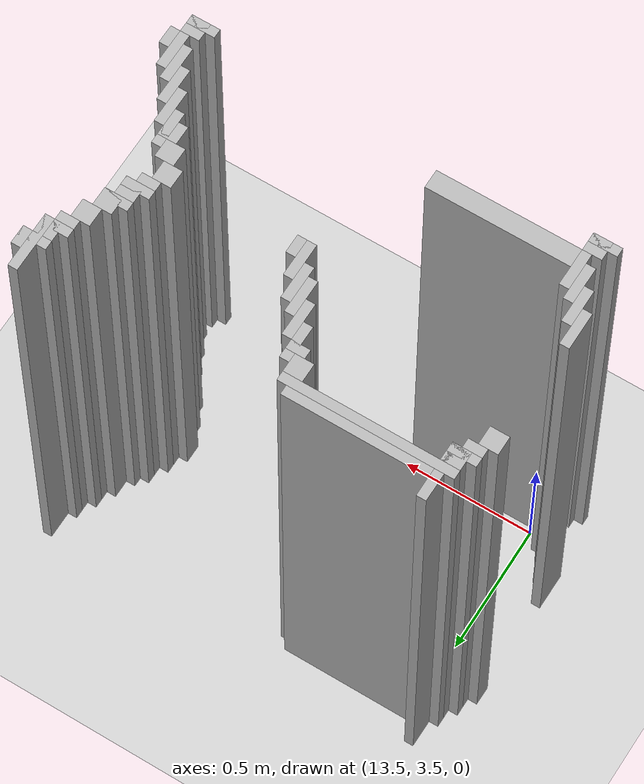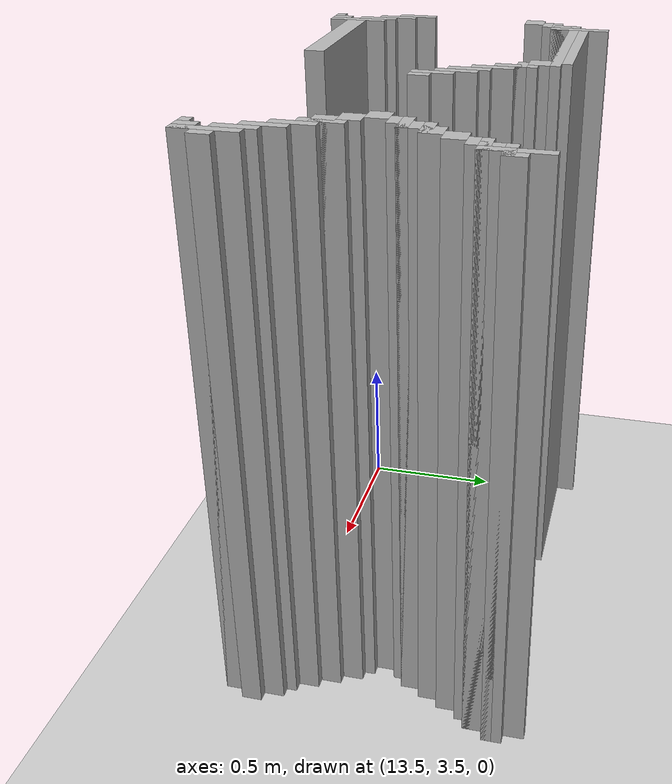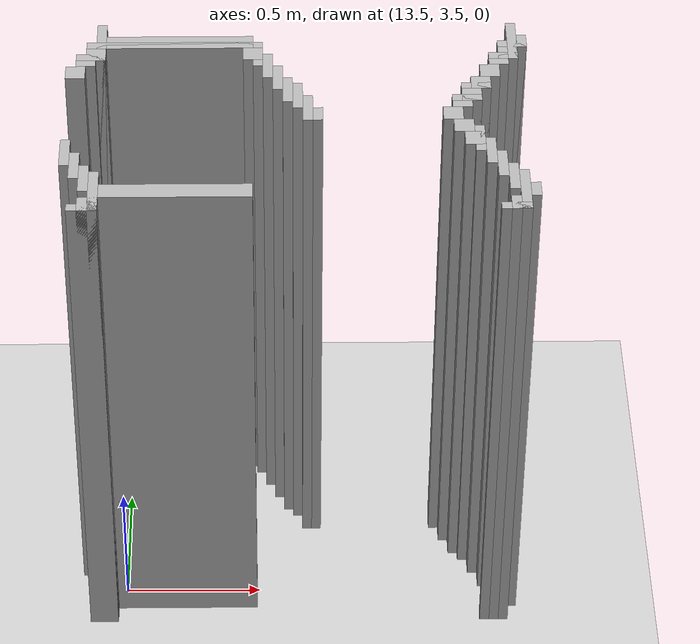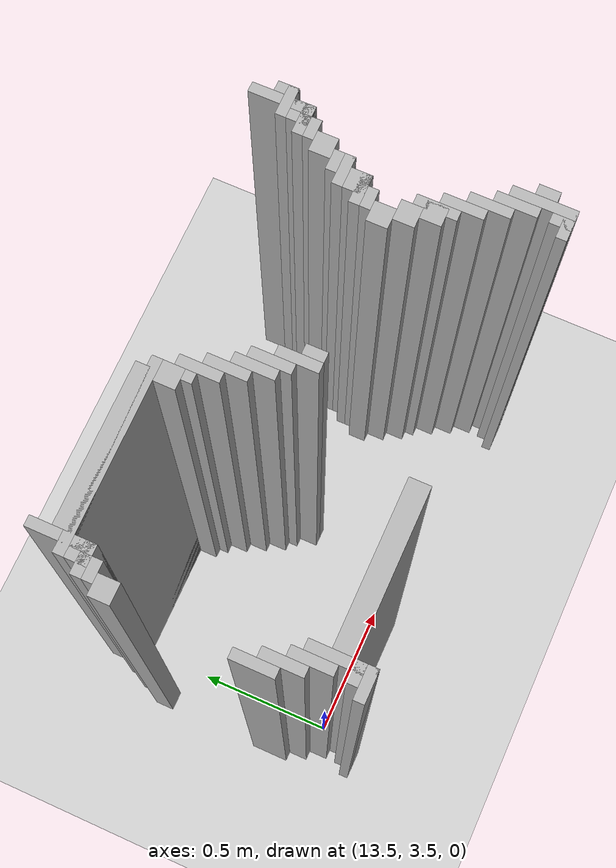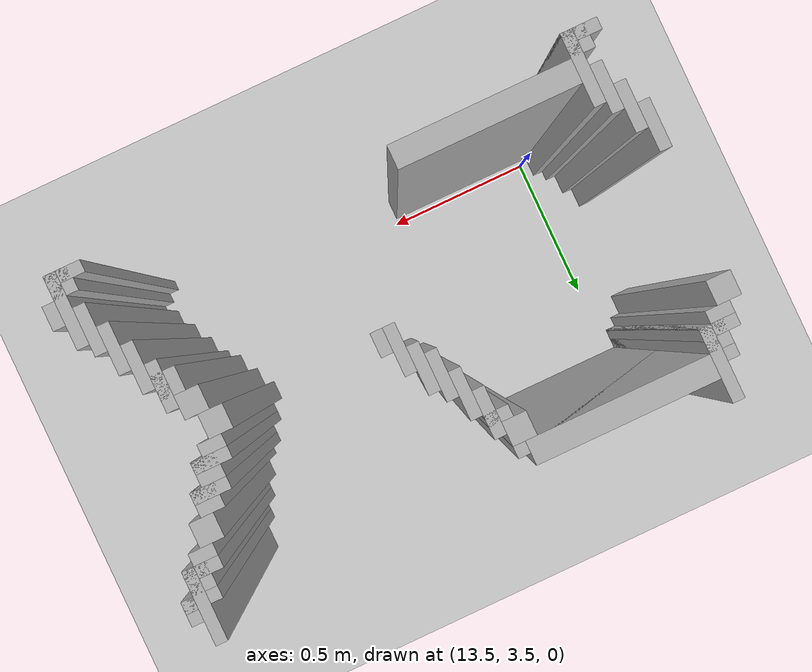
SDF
<sdf version="1.6">
 <world name="slam_world">
  <model name="ground_plane">
   <static>true</static>
   <link name="link">
    <collision name="collision">
     <geometry><plane><normal>0 0 1</normal><size>100 100</size></plane></geometry>
    </collision>
    <visual name="visual">
     <geometry><plane><normal>0 0 1</normal><size>100 100</size></plane></geometry>
     <material>
      <ambient>0.8 0.8 0.8 1</ambient>
      <diffuse>0.8 0.8 0.8 1</diffuse>
      <specular>0.8 0.8 0.8 1</specular>
     </material>
    </visual>
   </link>
  </model>
  <model name="wall_4327">
   <static>true</static>
   <pose>13.451276102088167 4.280742459396752 1.0 0 0 0</pose>
   <link name="link">
    <collision name="collision">
     <geometry><box><size>0.03480278422273782 0.2088167053364269 2.0</size></box></geometry>
    </collision>
    <visual name="visual">
     <geometry><box><size>0.03480278422273782 0.2088167053364269 2.0</size></box></geometry>
     <material><ambient>0.5 0.5 0.5 1</ambient><diffuse>0.7 0.7 0.7 1</diffuse></material>
    </visual>
   </link>
  </model>
  <model name="wall_4328">
   <static>true</static>
   <pose>14.912993039443155 4.280742459396752 1.0 0 0 0</pose>
   <link name="link">
    <collision name="collision">
     <geometry><box><size>0.03480278422273782 0.2088167053364269 2.0</size></box></geometry>
    </collision>
    <visual name="visual">
     <geometry><box><size>0.03480278422273782 0.2088167053364269 2.0</size></box></geometry>
     <material><ambient>0.5 0.5 0.5 1</ambient><diffuse>0.7 0.7 0.7 1</diffuse></material>
    </visual>
   </link>
  </model>
  <model name="wall_4343">
   <static>true</static>
   <pose>13.729698375870068 4.280742459396752 1.0 0 0 0</pose>
   <link name="link">
    <collision name="collision">
     <geometry><box><size>0.5220417633410672 0.06960556844547564 2.0</size></box></geometry>
    </collision>
    <visual name="visual">
     <geometry><box><size>0.5220417633410672 0.06960556844547564 2.0</size></box></geometry>
     <material><ambient>0.5 0.5 0.5 1</ambient><diffuse>0.7 0.7 0.7 1</diffuse></material>
    </visual>
   </link>
  </model>
  <model name="wall_4344">
   <static>true</static>
   <pose>14.947795823665892 4.280742459396752 1.0 0 0 0</pose>
   <link name="link">
    <collision name="collision">
     <geometry><box><size>0.03480278422273782 0.06960556844547564 2.0</size></box></geometry>
    </collision>
    <visual name="visual">
     <geometry><box><size>0.03480278422273782 0.06960556844547564 2.0</size></box></geometry>
     <material><ambient>0.5 0.5 0.5 1</ambient><diffuse>0.7 0.7 0.7 1</diffuse></material>
    </visual>
   </link>
  </model>
  <model name="wall_4355">
   <static>true</static>
   <pose>13.7122969837587 4.263341067285383 1.0 0 0 0</pose>
   <link name="link">
    <collision name="collision">
     <geometry><box><size>0.6264501160092807 0.03480278422273782 2.0</size></box></geometry>
    </collision>
    <visual name="visual">
     <geometry><box><size>0.6264501160092807 0.03480278422273782 2.0</size></box></geometry>
     <material><ambient>0.5 0.5 0.5 1</ambient><diffuse>0.7 0.7 0.7 1</diffuse></material>
    </visual>
   </link>
  </model>
  <model name="wall_4356">
   <static>true</static>
   <pose>14.912993039443155 4.263341067285383 1.0 0 0 0</pose>
   <link name="link">
    <collision name="collision">
     <geometry><box><size>0.10440835266821345 0.03480278422273782 2.0</size></box></geometry>
    </collision>
    <visual name="visual">
     <geometry><box><size>0.10440835266821345 0.03480278422273782 2.0</size></box></geometry>
     <material><ambient>0.5 0.5 0.5 1</ambient><diffuse>0.7 0.7 0.7 1</diffuse></material>
    </visual>
   </link>
  </model>
  <model name="wall_4370">
   <static>true</static>
   <pose>13.433874709976797 4.211136890951276 1.0 0 0 0</pose>
   <link name="link">
    <collision name="collision">
     <geometry><box><size>0.06960556844547564 0.06960556844547564 2.0</size></box></geometry>
    </collision>
    <visual name="visual">
     <geometry><box><size>0.06960556844547564 0.06960556844547564 2.0</size></box></geometry>
     <material><ambient>0.5 0.5 0.5 1</ambient><diffuse>0.7 0.7 0.7 1</diffuse></material>
    </visual>
   </link>
  </model>
  <model name="wall_4371">
   <static>true</static>
   <pose>13.990719257540603 4.211136890951276 1.0 0 0 0</pose>
   <link name="link">
    <collision name="collision">
     <geometry><box><size>0.06960556844547564 0.06960556844547564 2.0</size></box></geometry>
    </collision>
    <visual name="visual">
     <geometry><box><size>0.06960556844547564 0.06960556844547564 2.0</size></box></geometry>
     <material><ambient>0.5 0.5 0.5 1</ambient><diffuse>0.7 0.7 0.7 1</diffuse></material>
    </visual>
   </link>
  </model>
  <model name="wall_4372">
   <static>true</static>
   <pose>14.895591647331786 4.211136890951276 1.0 0 0 0</pose>
   <link name="link">
    <collision name="collision">
     <geometry><box><size>0.06960556844547564 0.06960556844547564 2.0</size></box></geometry>
    </collision>
    <visual name="visual">
     <geometry><box><size>0.06960556844547564 0.06960556844547564 2.0</size></box></geometry>
     <material><ambient>0.5 0.5 0.5 1</ambient><diffuse>0.7 0.7 0.7 1</diffuse></material>
    </visual>
   </link>
  </model>
  <model name="wall_4386">
   <static>true</static>
   <pose>13.416473317865428 4.193735498839907 1.0 0 0 0</pose>
   <link name="link">
    <collision name="collision">
     <geometry><box><size>0.10440835266821345 0.03480278422273782 2.0</size></box></geometry>
    </collision>
    <visual name="visual">
     <geometry><box><size>0.10440835266821345 0.03480278422273782 2.0</size></box></geometry>
     <material><ambient>0.5 0.5 0.5 1</ambient><diffuse>0.7 0.7 0.7 1</diffuse></material>
    </visual>
   </link>
  </model>
  <model name="wall_4387">
   <static>true</static>
   <pose>14.042923433874709 4.1415313225058 1.0 0 0 0</pose>
   <link name="link">
    <collision name="collision">
     <geometry><box><size>0.03480278422273782 0.13921113689095127 2.0</size></box></geometry>
    </collision>
    <visual name="visual">
     <geometry><box><size>0.03480278422273782 0.13921113689095127 2.0</size></box></geometry>
     <material><ambient>0.5 0.5 0.5 1</ambient><diffuse>0.7 0.7 0.7 1</diffuse></material>
    </visual>
   </link>
  </model>
  <model name="wall_4388">
   <static>true</static>
   <pose>14.878190255220417 4.193735498839907 1.0 0 0 0</pose>
   <link name="link">
    <collision name="collision">
     <geometry><box><size>0.10440835266821345 0.03480278422273782 2.0</size></box></geometry>
    </collision>
    <visual name="visual">
     <geometry><box><size>0.10440835266821345 0.03480278422273782 2.0</size></box></geometry>
     <material><ambient>0.5 0.5 0.5 1</ambient><diffuse>0.7 0.7 0.7 1</diffuse></material>
    </visual>
   </link>
  </model>
  <model name="wall_4399">
   <static>true</static>
   <pose>13.39907192575406 4.158932714617169 1.0 0 0 0</pose>
   <link name="link">
    <collision name="collision">
     <geometry><box><size>0.06960556844547564 0.03480278422273782 2.0</size></box></geometry>
    </collision>
    <visual name="visual">
     <geometry><box><size>0.06960556844547564 0.03480278422273782 2.0</size></box></geometry>
     <material><ambient>0.5 0.5 0.5 1</ambient><diffuse>0.7 0.7 0.7 1</diffuse></material>
    </visual>
   </link>
  </model>
  <model name="wall_4400">
   <static>true</static>
   <pose>14.02552204176334 4.158932714617169 1.0 0 0 0</pose>
   <link name="link">
    <collision name="collision">
     <geometry><box><size>0.06960556844547564 0.03480278422273782 2.0</size></box></geometry>
    </collision>
    <visual name="visual">
     <geometry><box><size>0.06960556844547564 0.03480278422273782 2.0</size></box></geometry>
     <material><ambient>0.5 0.5 0.5 1</ambient><diffuse>0.7 0.7 0.7 1</diffuse></material>
    </visual>
   </link>
  </model>
  <model name="wall_4401">
   <static>true</static>
   <pose>14.860788863109049 4.158932714617169 1.0 0 0 0</pose>
   <link name="link">
    <collision name="collision">
     <geometry><box><size>0.06960556844547564 0.03480278422273782 2.0</size></box></geometry>
    </collision>
    <visual name="visual">
     <geometry><box><size>0.06960556844547564 0.03480278422273782 2.0</size></box></geometry>
     <material><ambient>0.5 0.5 0.5 1</ambient><diffuse>0.7 0.7 0.7 1</diffuse></material>
    </visual>
   </link>
  </model>
  <model name="wall_4415">
   <static>true</static>
   <pose>13.364269141531322 4.106728538283062 1.0 0 0 0</pose>
   <link name="link">
    <collision name="collision">
     <geometry><box><size>0.06960556844547564 0.06960556844547564 2.0</size></box></geometry>
    </collision>
    <visual name="visual">
     <geometry><box><size>0.06960556844547564 0.06960556844547564 2.0</size></box></geometry>
     <material><ambient>0.5 0.5 0.5 1</ambient><diffuse>0.7 0.7 0.7 1</diffuse></material>
    </visual>
   </link>
  </model>
  <model name="wall_4416">
   <static>true</static>
   <pose>14.077726218097448 4.071925754060325 1.0 0 0 0</pose>
   <link name="link">
    <collision name="collision">
     <geometry><box><size>0.03480278422273782 0.13921113689095127 2.0</size></box></geometry>
    </collision>
    <visual name="visual">
     <geometry><box><size>0.03480278422273782 0.13921113689095127 2.0</size></box></geometry>
     <material><ambient>0.5 0.5 0.5 1</ambient><diffuse>0.7 0.7 0.7 1</diffuse></material>
    </visual>
   </link>
  </model>
  <model name="wall_4417">
   <static>true</static>
   <pose>14.825986078886311 4.106728538283062 1.0 0 0 0</pose>
   <link name="link">
    <collision name="collision">
     <geometry><box><size>0.06960556844547564 0.06960556844547564 2.0</size></box></geometry>
    </collision>
    <visual name="visual">
     <geometry><box><size>0.06960556844547564 0.06960556844547564 2.0</size></box></geometry>
     <material><ambient>0.5 0.5 0.5 1</ambient><diffuse>0.7 0.7 0.7 1</diffuse></material>
    </visual>
   </link>
  </model>
  <model name="wall_4432">
   <static>true</static>
   <pose>14.112529002320185 4.002320185614849 1.0 0 0 0</pose>
   <link name="link">
    <collision name="collision">
     <geometry><box><size>0.03480278422273782 0.13921113689095127 2.0</size></box></geometry>
    </collision>
    <visual name="visual">
     <geometry><box><size>0.03480278422273782 0.13921113689095127 2.0</size></box></geometry>
     <material><ambient>0.5 0.5 0.5 1</ambient><diffuse>0.7 0.7 0.7 1</diffuse></material>
    </visual>
   </link>
  </model>
  <model name="wall_4433">
   <static>true</static>
   <pose>14.791183294663572 4.037122969837587 1.0 0 0 0</pose>
   <link name="link">
    <collision name="collision">
     <geometry><box><size>0.06960556844547564 0.06960556844547564 2.0</size></box></geometry>
    </collision>
    <visual name="visual">
     <geometry><box><size>0.06960556844547564 0.06960556844547564 2.0</size></box></geometry>
     <material><ambient>0.5 0.5 0.5 1</ambient><diffuse>0.7 0.7 0.7 1</diffuse></material>
    </visual>
   </link>
  </model>
  <model name="wall_4448">
   <static>true</static>
   <pose>14.147331786542923 3.967517401392111 1.0 0 0 0</pose>
   <link name="link">
    <collision name="collision">
     <geometry><box><size>0.03480278422273782 0.13921113689095127 2.0</size></box></geometry>
    </collision>
    <visual name="visual">
     <geometry><box><size>0.03480278422273782 0.13921113689095127 2.0</size></box></geometry>
     <material><ambient>0.5 0.5 0.5 1</ambient><diffuse>0.7 0.7 0.7 1</diffuse></material>
    </visual>
   </link>
  </model>
  <model name="wall_4449">
   <static>true</static>
   <pose>14.773781902552203 4.019721577726218 1.0 0 0 0</pose>
   <link name="link">
    <collision name="collision">
     <geometry><box><size>0.10440835266821345 0.03480278422273782 2.0</size></box></geometry>
    </collision>
    <visual name="visual">
     <geometry><box><size>0.10440835266821345 0.03480278422273782 2.0</size></box></geometry>
     <material><ambient>0.5 0.5 0.5 1</ambient><diffuse>0.7 0.7 0.7 1</diffuse></material>
    </visual>
   </link>
  </model>
  <model name="wall_4458">
   <static>true</static>
   <pose>14.756380510440835 3.967517401392111 1.0 0 0 0</pose>
   <link name="link">
    <collision name="collision">
     <geometry><box><size>0.06960556844547564 0.06960556844547564 2.0</size></box></geometry>
    </collision>
    <visual name="visual">
     <geometry><box><size>0.06960556844547564 0.06960556844547564 2.0</size></box></geometry>
     <material><ambient>0.5 0.5 0.5 1</ambient><diffuse>0.7 0.7 0.7 1</diffuse></material>
    </visual>
   </link>
  </model>
  <model name="wall_4473">
   <static>true</static>
   <pose>14.18213457076566 3.897911832946636 1.0 0 0 0</pose>
   <link name="link">
    <collision name="collision">
     <geometry><box><size>0.03480278422273782 0.13921113689095127 2.0</size></box></geometry>
    </collision>
    <visual name="visual">
     <geometry><box><size>0.03480278422273782 0.13921113689095127 2.0</size></box></geometry>
     <material><ambient>0.5 0.5 0.5 1</ambient><diffuse>0.7 0.7 0.7 1</diffuse></material>
    </visual>
   </link>
  </model>
  <model name="wall_4474">
   <static>true</static>
   <pose>14.738979118329466 3.9501160092807424 1.0 0 0 0</pose>
   <link name="link">
    <collision name="collision">
     <geometry><box><size>0.10440835266821345 0.03480278422273782 2.0</size></box></geometry>
    </collision>
    <visual name="visual">
     <geometry><box><size>0.10440835266821345 0.03480278422273782 2.0</size></box></geometry>
     <material><ambient>0.5 0.5 0.5 1</ambient><diffuse>0.7 0.7 0.7 1</diffuse></material>
    </visual>
   </link>
  </model>
  <model name="wall_4483">
   <static>true</static>
   <pose>14.721577726218097 3.9153132250580045 1.0 0 0 0</pose>
   <link name="link">
    <collision name="collision">
     <geometry><box><size>0.06960556844547564 0.03480278422273782 2.0</size></box></geometry>
    </collision>
    <visual name="visual">
     <geometry><box><size>0.06960556844547564 0.03480278422273782 2.0</size></box></geometry>
     <material><ambient>0.5 0.5 0.5 1</ambient><diffuse>0.7 0.7 0.7 1</diffuse></material>
    </visual>
   </link>
  </model>
  <model name="wall_4498">
   <static>true</static>
   <pose>14.2169373549884 3.863109048723898 1.0 0 0 0</pose>
   <link name="link">
    <collision name="collision">
     <geometry><box><size>0.03480278422273782 0.06960556844547564 2.0</size></box></geometry>
    </collision>
    <visual name="visual">
     <geometry><box><size>0.03480278422273782 0.06960556844547564 2.0</size></box></geometry>
     <material><ambient>0.5 0.5 0.5 1</ambient><diffuse>0.7 0.7 0.7 1</diffuse></material>
    </visual>
   </link>
  </model>
  <model name="wall_4499">
   <static>true</static>
   <pose>14.68677494199536 3.863109048723898 1.0 0 0 0</pose>
   <link name="link">
    <collision name="collision">
     <geometry><box><size>0.06960556844547564 0.06960556844547564 2.0</size></box></geometry>
    </collision>
    <visual name="visual">
     <geometry><box><size>0.06960556844547564 0.06960556844547564 2.0</size></box></geometry>
     <material><ambient>0.5 0.5 0.5 1</ambient><diffuse>0.7 0.7 0.7 1</diffuse></material>
    </visual>
   </link>
  </model>
  <model name="wall_4510">
   <static>true</static>
   <pose>14.721577726218097 3.793503480278422 1.0 0 0 0</pose>
   <link name="link">
    <collision name="collision">
     <geometry><box><size>0.06960556844547564 0.06960556844547564 2.0</size></box></geometry>
    </collision>
    <visual name="visual">
     <geometry><box><size>0.06960556844547564 0.06960556844547564 2.0</size></box></geometry>
     <material><ambient>0.5 0.5 0.5 1</ambient><diffuse>0.7 0.7 0.7 1</diffuse></material>
    </visual>
   </link>
  </model>
  <model name="wall_4521">
   <static>true</static>
   <pose>14.773781902552203 3.7238979118329465 1.0 0 0 0</pose>
   <link name="link">
    <collision name="collision">
     <geometry><box><size>0.03480278422273782 0.13921113689095127 2.0</size></box></geometry>
    </collision>
    <visual name="visual">
     <geometry><box><size>0.03480278422273782 0.13921113689095127 2.0</size></box></geometry>
     <material><ambient>0.5 0.5 0.5 1</ambient><diffuse>0.7 0.7 0.7 1</diffuse></material>
    </visual>
   </link>
  </model>
  <model name="wall_4532">
   <static>true</static>
   <pose>14.756380510440835 3.7238979118329465 1.0 0 0 0</pose>
   <link name="link">
    <collision name="collision">
     <geometry><box><size>0.06960556844547564 0.06960556844547564 2.0</size></box></geometry>
    </collision>
    <visual name="visual">
     <geometry><box><size>0.06960556844547564 0.06960556844547564 2.0</size></box></geometry>
     <material><ambient>0.5 0.5 0.5 1</ambient><diffuse>0.7 0.7 0.7 1</diffuse></material>
    </visual>
   </link>
  </model>
  <model name="wall_4542">
   <static>true</static>
   <pose>13.346867749419953 3.6542923433874708 1.0 0 0 0</pose>
   <link name="link">
    <collision name="collision">
     <geometry><box><size>0.03480278422273782 0.13921113689095127 2.0</size></box></geometry>
    </collision>
    <visual name="visual">
     <geometry><box><size>0.03480278422273782 0.13921113689095127 2.0</size></box></geometry>
     <material><ambient>0.5 0.5 0.5 1</ambient><diffuse>0.7 0.7 0.7 1</diffuse></material>
    </visual>
   </link>
  </model>
  <model name="wall_4543">
   <static>true</static>
   <pose>14.80858468677494 3.6542923433874708 1.0 0 0 0</pose>
   <link name="link">
    <collision name="collision">
     <geometry><box><size>0.03480278422273782 0.13921113689095127 2.0</size></box></geometry>
    </collision>
    <visual name="visual">
     <geometry><box><size>0.03480278422273782 0.13921113689095127 2.0</size></box></geometry>
     <material><ambient>0.5 0.5 0.5 1</ambient><diffuse>0.7 0.7 0.7 1</diffuse></material>
    </visual>
   </link>
  </model>
  <model name="wall_4557">
   <static>true</static>
   <pose>13.38167053364269 3.584686774941995 1.0 0 0 0</pose>
   <link name="link">
    <collision name="collision">
     <geometry><box><size>0.03480278422273782 0.13921113689095127 2.0</size></box></geometry>
    </collision>
    <visual name="visual">
     <geometry><box><size>0.03480278422273782 0.13921113689095127 2.0</size></box></geometry>
     <material><ambient>0.5 0.5 0.5 1</ambient><diffuse>0.7 0.7 0.7 1</diffuse></material>
    </visual>
   </link>
  </model>
  <model name="wall_4558">
   <static>true</static>
   <pose>14.84338747099768 3.584686774941995 1.0 0 0 0</pose>
   <link name="link">
    <collision name="collision">
     <geometry><box><size>0.03480278422273782 0.13921113689095127 2.0</size></box></geometry>
    </collision>
    <visual name="visual">
     <geometry><box><size>0.03480278422273782 0.13921113689095127 2.0</size></box></geometry>
     <material><ambient>0.5 0.5 0.5 1</ambient><diffuse>0.7 0.7 0.7 1</diffuse></material>
    </visual>
   </link>
  </model>
  <model name="wall_4572">
   <static>true</static>
   <pose>13.416473317865428 3.51508120649652 1.0 0 0 0</pose>
   <link name="link">
    <collision name="collision">
     <geometry><box><size>0.03480278422273782 0.13921113689095127 2.0</size></box></geometry>
    </collision>
    <visual name="visual">
     <geometry><box><size>0.03480278422273782 0.13921113689095127 2.0</size></box></geometry>
     <material><ambient>0.5 0.5 0.5 1</ambient><diffuse>0.7 0.7 0.7 1</diffuse></material>
    </visual>
   </link>
  </model>
  <model name="wall_4573">
   <static>true</static>
   <pose>14.878190255220417 3.51508120649652 1.0 0 0 0</pose>
   <link name="link">
    <collision name="collision">
     <geometry><box><size>0.03480278422273782 0.13921113689095127 2.0</size></box></geometry>
    </collision>
    <visual name="visual">
     <geometry><box><size>0.03480278422273782 0.13921113689095127 2.0</size></box></geometry>
     <material><ambient>0.5 0.5 0.5 1</ambient><diffuse>0.7 0.7 0.7 1</diffuse></material>
    </visual>
   </link>
  </model>
  <model name="wall_4583">
   <static>true</static>
   <pose>13.451276102088167 3.445475638051044 1.0 0 0 0</pose>
   <link name="link">
    <collision name="collision">
     <geometry><box><size>0.03480278422273782 0.2088167053364269 2.0</size></box></geometry>
    </collision>
    <visual name="visual">
     <geometry><box><size>0.03480278422273782 0.2088167053364269 2.0</size></box></geometry>
     <material><ambient>0.5 0.5 0.5 1</ambient><diffuse>0.7 0.7 0.7 1</diffuse></material>
    </visual>
   </link>
  </model>
  <model name="wall_4584">
   <static>true</static>
   <pose>14.912993039443155 3.445475638051044 1.0 0 0 0</pose>
   <link name="link">
    <collision name="collision">
     <geometry><box><size>0.03480278422273782 0.2088167053364269 2.0</size></box></geometry>
    </collision>
    <visual name="visual">
     <geometry><box><size>0.03480278422273782 0.2088167053364269 2.0</size></box></geometry>
     <material><ambient>0.5 0.5 0.5 1</ambient><diffuse>0.7 0.7 0.7 1</diffuse></material>
    </visual>
   </link>
  </model>
  <model name="wall_4602">
   <static>true</static>
   <pose>13.729698375870068 3.445475638051044 1.0 0 0 0</pose>
   <link name="link">
    <collision name="collision">
     <geometry><box><size>0.5220417633410672 0.06960556844547564 2.0</size></box></geometry>
    </collision>
    <visual name="visual">
     <geometry><box><size>0.5220417633410672 0.06960556844547564 2.0</size></box></geometry>
     <material><ambient>0.5 0.5 0.5 1</ambient><diffuse>0.7 0.7 0.7 1</diffuse></material>
    </visual>
   </link>
  </model>
  <model name="wall_4603">
   <static>true</static>
   <pose>14.947795823665892 3.445475638051044 1.0 0 0 0</pose>
   <link name="link">
    <collision name="collision">
     <geometry><box><size>0.03480278422273782 0.06960556844547564 2.0</size></box></geometry>
    </collision>
    <visual name="visual">
     <geometry><box><size>0.03480278422273782 0.06960556844547564 2.0</size></box></geometry>
     <material><ambient>0.5 0.5 0.5 1</ambient><diffuse>0.7 0.7 0.7 1</diffuse></material>
    </visual>
   </link>
  </model>
  <model name="wall_4623">
   <static>true</static>
   <pose>13.433874709976797 3.3758700696055683 1.0 0 0 0</pose>
   <link name="link">
    <collision name="collision">
     <geometry><box><size>0.06960556844547564 0.06960556844547564 2.0</size></box></geometry>
    </collision>
    <visual name="visual">
     <geometry><box><size>0.06960556844547564 0.06960556844547564 2.0</size></box></geometry>
     <material><ambient>0.5 0.5 0.5 1</ambient><diffuse>0.7 0.7 0.7 1</diffuse></material>
    </visual>
   </link>
  </model>
  <model name="wall_4624">
   <static>true</static>
   <pose>14.895591647331786 3.3758700696055683 1.0 0 0 0</pose>
   <link name="link">
    <collision name="collision">
     <geometry><box><size>0.06960556844547564 0.06960556844547564 2.0</size></box></geometry>
    </collision>
    <visual name="visual">
     <geometry><box><size>0.06960556844547564 0.06960556844547564 2.0</size></box></geometry>
     <material><ambient>0.5 0.5 0.5 1</ambient><diffuse>0.7 0.7 0.7 1</diffuse></material>
    </visual>
   </link>
  </model>
  <model name="wall_4640">
   <static>true</static>
   <pose>13.416473317865428 3.358468677494199 1.0 0 0 0</pose>
   <link name="link">
    <collision name="collision">
     <geometry><box><size>0.10440835266821345 0.03480278422273782 2.0</size></box></geometry>
    </collision>
    <visual name="visual">
     <geometry><box><size>0.10440835266821345 0.03480278422273782 2.0</size></box></geometry>
     <material><ambient>0.5 0.5 0.5 1</ambient><diffuse>0.7 0.7 0.7 1</diffuse></material>
    </visual>
   </link>
  </model>
  <model name="wall_4641">
   <static>true</static>
   <pose>14.878190255220417 3.358468677494199 1.0 0 0 0</pose>
   <link name="link">
    <collision name="collision">
     <geometry><box><size>0.10440835266821345 0.03480278422273782 2.0</size></box></geometry>
    </collision>
    <visual name="visual">
     <geometry><box><size>0.10440835266821345 0.03480278422273782 2.0</size></box></geometry>
     <material><ambient>0.5 0.5 0.5 1</ambient><diffuse>0.7 0.7 0.7 1</diffuse></material>
    </visual>
   </link>
  </model>
 </world>
</sdf>
